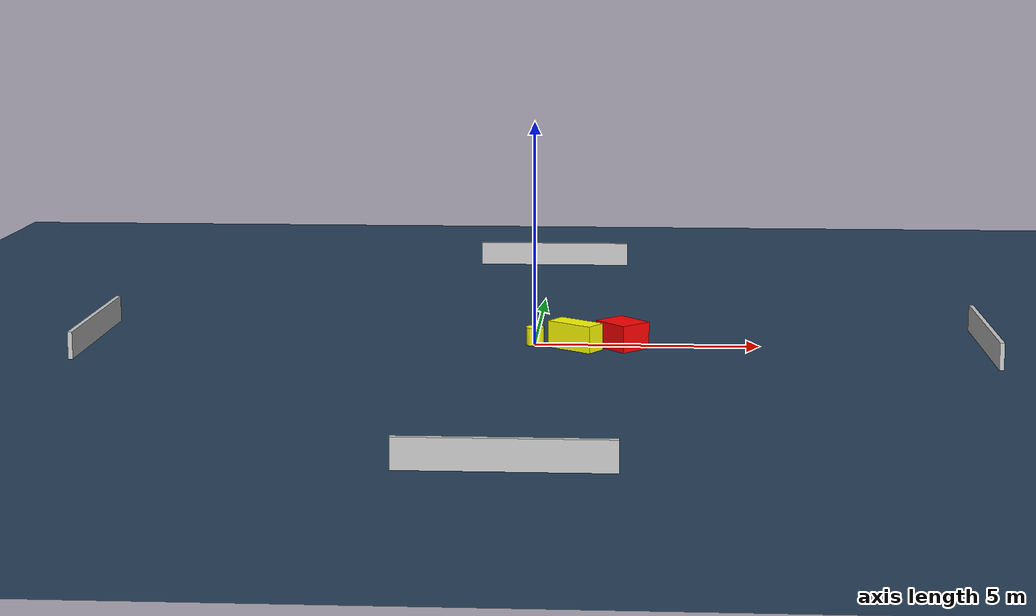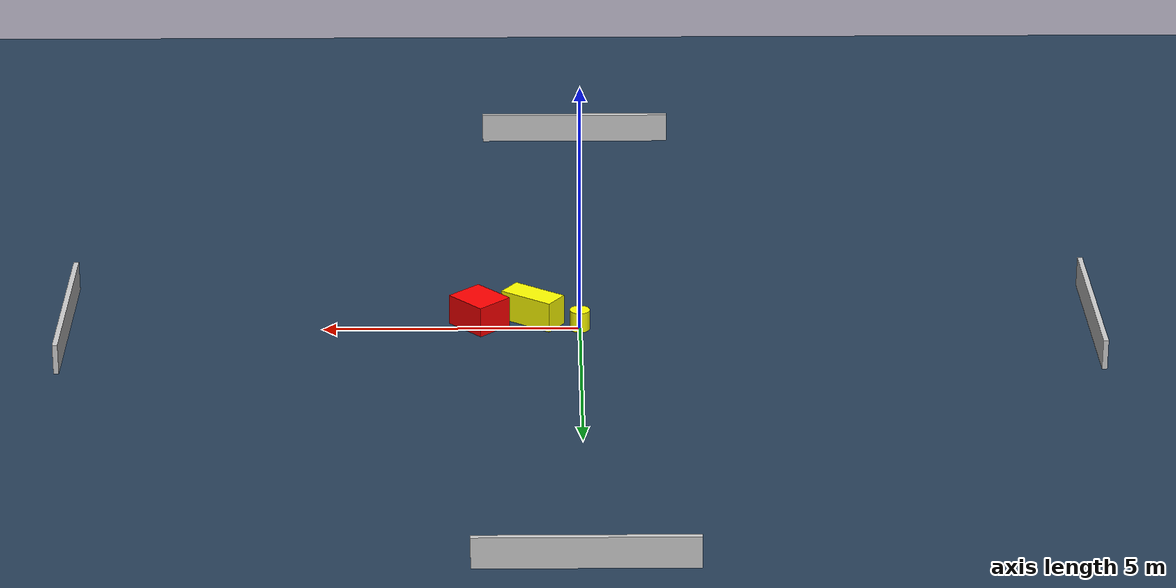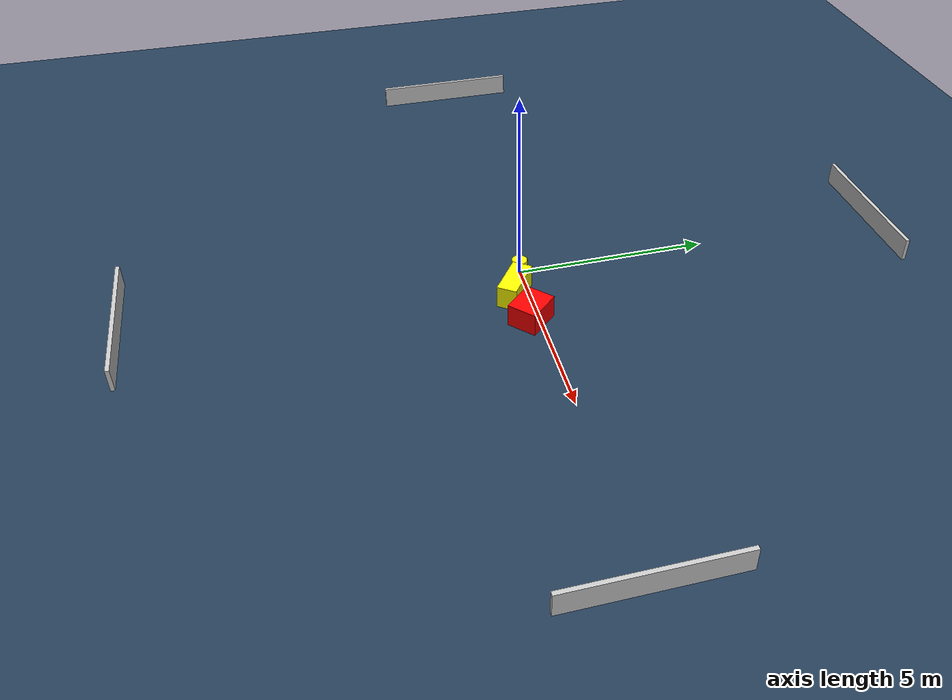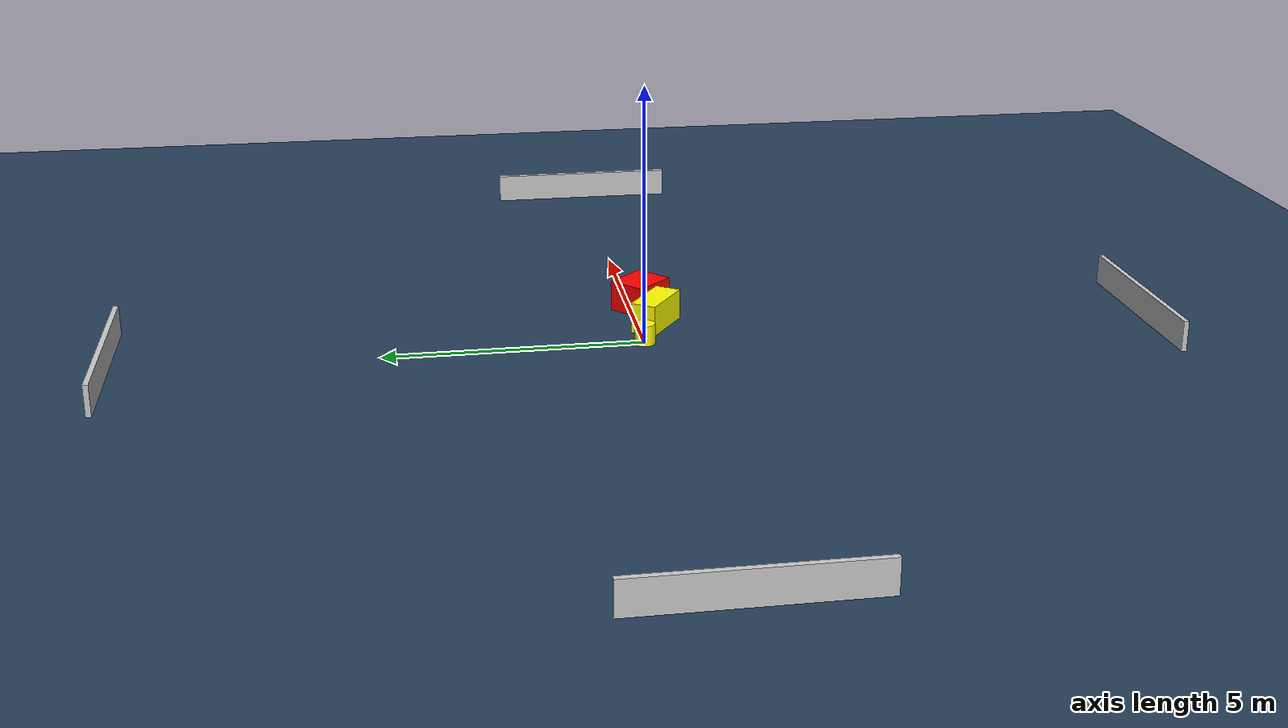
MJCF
<?xml version="1.0" ?>
<mujoco model="generated_environment">
  <option timestep="0.01" integrator="RK4" cone="elliptic"/>
  <default>
    <geom density="1"/>
  </default>
  <asset>
    <texture builtin="gradient" height="3072" name="skybox" rgb1="0.3 0.5 0.7" rgb2="0 0 0" type="skybox" width="512"/>
    <texture builtin="checker" height="300" name="groundplane" rgb1="0.2 0.3 0.4" rgb2="0.1 0.2 0.3" type="2d" width="300"/>
    <material name="groundplane" reflectance="0.2" texrepeat="5 5" texture="groundplane"/>
  </asset>
  <worldbody>
    <light dir="0 0 -1" directional="true" pos="0 0 1.5"/>
    <geom condim="3" friction="0.5 0.005 0.001" material="groundplane" name="floor" pos="0 0 0" size="0 0 0.05" type="plane"/>
    <body name="walls">
      <geom name="wall_1" condim="4" pos="-10.0 0.0 0.3" rgba="0.800000011920929 0.800000011920929 0.800000011920929 1.0" size="0.05 2.0 0.3" type="box"/>
      <geom name="wall_2" condim="4" pos="10.0 0.0 0.3" rgba="0.800000011920929 0.800000011920929 0.800000011920929 1.0" size="0.05 2.0 0.3" type="box"/>
      <geom name="wall_3" condim="4" pos="0.0 -10.0 0.3" rgba="0.800000011920929 0.800000011920929 0.800000011920929 1.0" size="2.0 0.05 0.3" type="box"/>
      <geom name="wall_4" condim="4" pos="0.0 10.0 0.3" rgba="0.800000011920929 0.800000011920929 0.800000011920929 1.0" size="2.0 0.05 0.3" type="box"/>
    </body>
    <body name="robot">
      <joint name="joint_x" type="slide" pos="0 0 0" axis="1 0 0"/>
      <joint name="joint_y" type="slide" pos="0 0 0" axis="0 1 0"/>
      <geom name="robot" type="cylinder" pos="0.0 0.0 0.2" size="0.2 0.2 0.0" mass="5.0" friction="1.0 0.005 0.0001" condim="4" rgba="1.0 1.0 0.0 1.0"/>
    </body>
    <body name="obstacle_1_movable">
      <geom name="obstacle_1_movable" condim="4" pos="0.916955579624894 -0.36068871115737455 0.3" euler="0 0 145.18027745458056" friction="0.0 0.005 0.001" rgba="1.0 1.0 0.0 1.0" size="0.5662309369883569 0.2560737619882635 0.3" type="box" mass="0.1"/>
      <joint type="free"/>
    </body>
    <body name="obstacle_2_static">
      <geom name="obstacle_2_static" condim="4" pos="1.9583747163414533 -0.21321820687250237 0.3" euler="0 0 43.377047883261035" friction="0.0 0.005 0.001" rgba="1.0 0.0 0.0 1.0" size="0.3879830988031131 0.4494346644190365 0.3" type="box"/>
    </body>
  </worldbody>
  <actuator>
    <motor name="actuator_x" joint="joint_x" gear="1" ctrlrange="-1 1"/>
    <motor name="actuator_y" joint="joint_y" gear="1" ctrlrange="-1 1"/>
  </actuator>
</mujoco>
